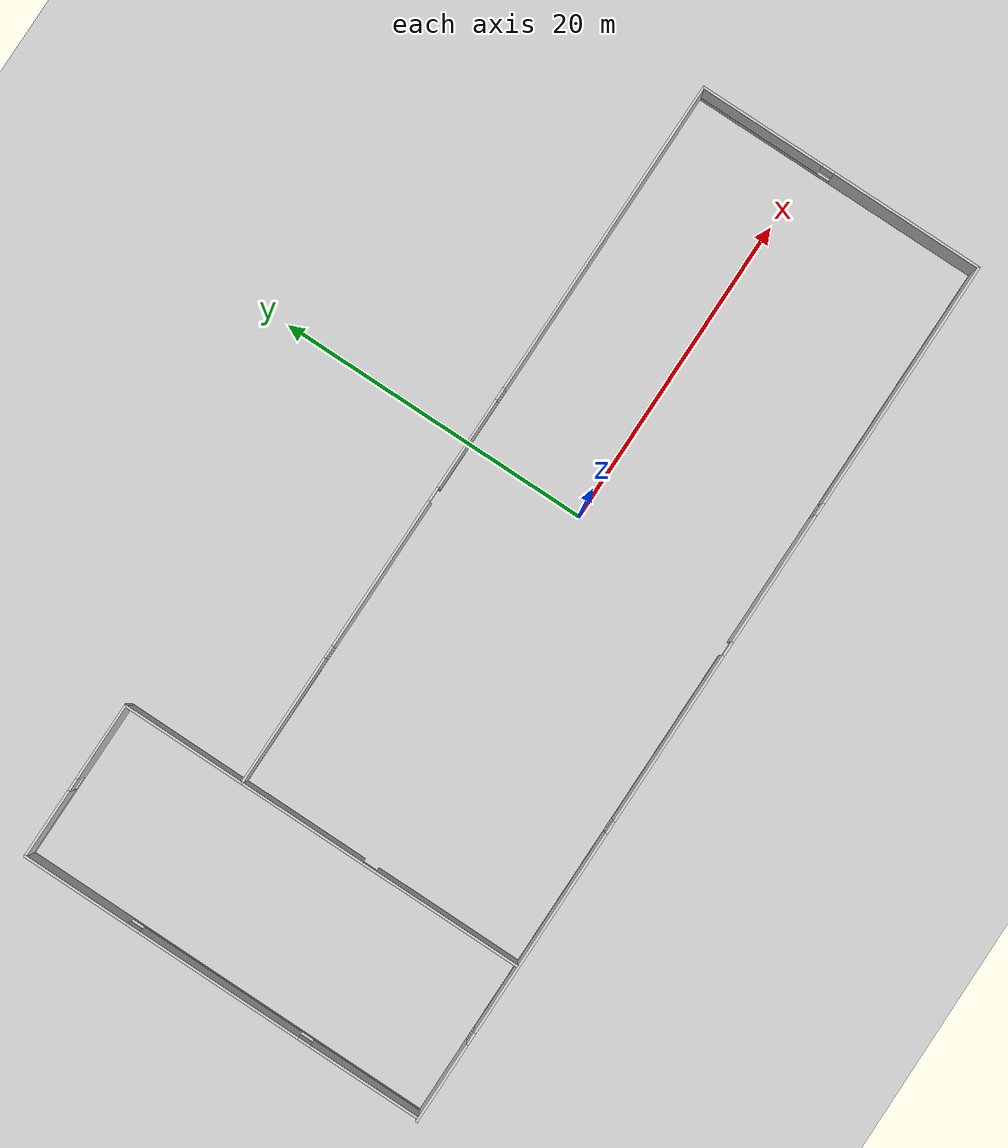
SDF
<sdf version="1.6">
 <world name="default">
  <light name="sun" type="directional">
   <pose>0 0 10 0 -0 0</pose>
   <diffuse>0.8 0.8 0.8 1</diffuse>
   <specular>0.2 0.2 0.2 1</specular>
   <attenuation>
    <range>1000</range>
    <constant>0.9</constant>
    <linear>0.01</linear>
    <quadratic>0.001</quadratic>
   </attenuation>
   <direction>-0.5 0.1 -0.9</direction>
  </light>
  <model name="ground_plane">
   <static>1</static>
   <link name="link">
    <collision name="collision">
     <geometry><plane><normal>0 0 1</normal><size>100 100</size></plane></geometry>
     <surface>
      <contact><collide_bitmask>65535</collide_bitmask></contact>
      <friction><ode><mu>100</mu><mu2>50</mu2></ode></friction>
     </surface>
    </collision>
    <visual name="visual">
     <cast_shadows>0</cast_shadows>
     <geometry><plane><normal>0 0 1</normal><size>100 100</size></plane></geometry>
     <material>
      <script><uri>file://media/materials/scripts/gazebo.material</uri><name>Gazebo/Grey</name></script>
     </material>
    </visual>
   </link>
  </model>
  <gravity>0 0 -9.8</gravity>
  <magnetic_field>6e-06 2.3e-05 -4.2e-05</magnetic_field>
  <atmosphere type="adiabatic"/>
  <physics name="default_physics" default="0" type="ode">
   <max_step_size>0.001</max_step_size>
   <real_time_factor>1</real_time_factor>
   <real_time_update_rate>1000</real_time_update_rate>
  </physics>
  <scene><ambient>0.4 0.4 0.4 1</ambient><background>0.7 0.7 0.7 1</background><shadows>1</shadows></scene>
  <spherical_coordinates>
   <surface_model>EARTH_WGS84</surface_model>
   <latitude_deg>0</latitude_deg>
   <longitude_deg>0</longitude_deg>
   <elevation>0</elevation>
   <heading_deg>0</heading_deg>
  </spherical_coordinates>
  <model name="building_2">
   <pose>-4.62001 2.1392 0 0 -0 0</pose>
   <link name="Wall_0">
    <pose>-1e-06 -13.225 0 0 -0 0</pose>
    <visual name="Wall_0_Visual_0">
     <pose>-26.1899 0 1.25 0 -0 0</pose>
     <geometry><box><size>5.1202 0.15 2.5</size></box></geometry>
     <material>
      <script><uri>file://media/materials/scripts/gazebo.material</uri><name>Gazebo/CeilingTiled</name></script>
      <ambient>1 0.764706 0.305882 1</ambient>
     </material>
     <meta><layer>0</layer></meta>
    </visual>
    <collision name="Wall_0_Collision_0">
     <geometry><box><size>5.1202 0.15 2.5</size></box></geometry>
     <pose>-26.1899 0 1.25 0 -0 0</pose>
    </collision>
    <visual name="Wall_0_Visual_1">
     <pose>7.61008 0 1.25 0 -0 0</pose>
     <geometry><box><size>8.55535 0.15 2.5</size></box></geometry>
     <material>
      <script><uri>file://media/materials/scripts/gazebo.material</uri><name>Gazebo/CeilingTiled</name></script>
      <ambient>1 0.764706 0.305882 1</ambient>
     </material>
     <meta><layer>0</layer></meta>
    </visual>
    <collision name="Wall_0_Collision_1">
     <geometry><box><size>8.55535 0.15 2.5</size></box></geometry>
     <pose>7.61008 0 1.25 0 -0 0</pose>
    </collision>
    <visual name="Wall_0_Visual_2">
     <pose>-10.5987 0 0.25 0 -0 0</pose>
     <geometry><box><size>26.0622 0.15 0.5</size></box></geometry>
     <material>
      <script><uri>file://media/materials/scripts/gazebo.material</uri><name>Gazebo/CeilingTiled</name></script>
      <ambient>1 0.764706 0.305882 1</ambient>
     </material>
     <meta><layer>0</layer></meta>
    </visual>
    <collision name="Wall_0_Collision_2">
     <geometry><box><size>26.0622 0.15 0.5</size></box></geometry>
     <pose>-10.5987 0 0.25 0 -0 0</pose>
    </collision>
    <visual name="Wall_0_Visual_3">
     <pose>20.3189 0 0.25 0 -0 0</pose>
     <geometry><box><size>16.8622 0.15 0.5</size></box></geometry>
     <material>
      <script><uri>file://media/materials/scripts/gazebo.material</uri><name>Gazebo/CeilingTiled</name></script>
      <ambient>1 0.764706 0.305882 1</ambient>
     </material>
     <meta><layer>0</layer></meta>
    </visual>
    <collision name="Wall_0_Collision_3">
     <geometry><box><size>16.8622 0.15 0.5</size></box></geometry>
     <pose>20.3189 0 0.25 0 -0 0</pose>
    </collision>
    <visual name="Wall_0_Visual_4">
     <pose>-16.1758 0 1.5 0 -0 0</pose>
     <geometry><box><size>13.308 0.15 2</size></box></geometry>
     <material>
      <script><uri>file://media/materials/scripts/gazebo.material</uri><name>Gazebo/CeilingTiled</name></script>
      <ambient>1 0.764706 0.305882 1</ambient>
     </material>
     <meta><layer>0</layer></meta>
    </visual>
    <collision name="Wall_0_Collision_4">
     <geometry><box><size>13.308 0.15 2</size></box></geometry>
     <pose>-16.1758 0 1.5 0 -0 0</pose>
    </collision>
    <visual name="Wall_0_Visual_5">
     <pose>-3.14469 0 1.5 0 -0 0</pose>
     <geometry><box><size>11.1542 0.15 2</size></box></geometry>
     <material>
      <script><uri>file://media/materials/scripts/gazebo.material</uri><name>Gazebo/CeilingTiled</name></script>
      <ambient>1 0.764706 0.305882 1</ambient>
     </material>
     <meta><layer>0</layer></meta>
    </visual>
    <collision name="Wall_0_Collision_5">
     <geometry><box><size>11.1542 0.15 2</size></box></geometry>
     <pose>-3.14469 0 1.5 0 -0 0</pose>
    </collision>
    <visual name="Wall_0_Visual_6">
     <pose>-3.14469 0 1.5 0 -0 0</pose>
     <geometry><box><size>11.1542 0.15 2</size></box></geometry>
     <material>
      <script><uri>file://media/materials/scripts/gazebo.material</uri><name>Gazebo/CeilingTiled</name></script>
      <ambient>1 0.764706 0.305882 1</ambient>
     </material>
     <meta><layer>0</layer></meta>
    </visual>
    <collision name="Wall_0_Collision_6">
     <geometry><box><size>11.1542 0.15 2</size></box></geometry>
     <pose>-3.14469 0 1.5 0 -0 0</pose>
    </collision>
    <visual name="Wall_0_Visual_7">
     <pose>20.7189 0 1.5 0 -0 0</pose>
     <geometry><box><size>16.0622 0.15 2</size></box></geometry>
     <material>
      <script><uri>file://media/materials/scripts/gazebo.material</uri><name>Gazebo/CeilingTiled</name></script>
      <ambient>1 0.764706 0.305882 1</ambient>
     </material>
     <meta><layer>0</layer></meta>
    </visual>
    <collision name="Wall_0_Collision_7">
     <geometry><box><size>16.0622 0.15 2</size></box></geometry>
     <pose>20.7189 0 1.5 0 -0 0</pose>
    </collision>
    <visual name="Wall_0_Visual_8">
     <pose>-23.2298 0 1.9 0 -0 0</pose>
     <geometry><box><size>0.8 0.15 1.2</size></box></geometry>
     <material>
      <script><uri>file://media/materials/scripts/gazebo.material</uri><name>Gazebo/CeilingTiled</name></script>
      <ambient>1 0.764706 0.305882 1</ambient>
     </material>
     <meta><layer>0</layer></meta>
    </visual>
    <collision name="Wall_0_Collision_8">
     <geometry><box><size>0.8 0.15 1.2</size></box></geometry>
     <pose>-23.2298 0 1.9 0 -0 0</pose>
    </collision>
    <visual name="Wall_0_Visual_9">
     <pose>12.2878 0 1.9 0 -0 0</pose>
     <geometry><box><size>0.8 0.15 1.2</size></box></geometry>
     <material>
      <script><uri>file://media/materials/scripts/gazebo.material</uri><name>Gazebo/CeilingTiled</name></script>
      <ambient>1 0.764706 0.305882 1</ambient>
     </material>
     <meta><layer>0</layer></meta>
    </visual>
    <collision name="Wall_0_Collision_9">
     <geometry><box><size>0.8 0.15 1.2</size></box></geometry>
     <pose>12.2878 0 1.9 0 -0 0</pose>
    </collision>
    <visual name="Wall_0_Visual_10">
     <pose>-9.12178 0 1.9 0 -0 0</pose>
     <geometry><box><size>0.8 0.15 1.2</size></box></geometry>
     <material>
      <script><uri>file://media/materials/scripts/gazebo.material</uri><name>Gazebo/CeilingTiled</name></script>
      <ambient>1 0.764706 0.305882 1</ambient>
     </material>
     <meta><layer>0</layer></meta>
    </visual>
    <collision name="Wall_0_Collision_10">
     <geometry><box><size>0.8 0.15 1.2</size></box></geometry>
     <pose>-9.12178 0 1.9 0 -0 0</pose>
    </collision>
    <visual name="Wall_0_Visual_11">
     <pose>2.88241 0 2.25 0 -0 0</pose>
     <geometry><box><size>0.9 0.15 0.5</size></box></geometry>
     <material>
      <script><uri>file://media/materials/scripts/gazebo.material</uri><name>Gazebo/CeilingTiled</name></script>
      <ambient>1 0.764706 0.305882 1</ambient>
     </material>
     <meta><layer>0</layer></meta>
    </visual>
    <collision name="Wall_0_Collision_11">
     <geometry><box><size>0.9 0.15 0.5</size></box></geometry>
     <pose>2.88241 0 2.25 0 -0 0</pose>
    </collision>
    <visual name="Wall_0_Visual_12">
     <pose>2.88241 0 2.25 0 -0 0</pose>
     <geometry><box><size>0.9 0.15 0.5</size></box></geometry>
     <material>
      <script><uri>file://media/materials/scripts/gazebo.material</uri><name>Gazebo/CeilingTiled</name></script>
      <ambient>1 0.764706 0.305882 1</ambient>
     </material>
     <meta><layer>0</layer></meta>
    </visual>
    <collision name="Wall_0_Collision_12">
     <geometry><box><size>0.9 0.15 0.5</size></box></geometry>
     <pose>2.88241 0 2.25 0 -0 0</pose>
    </collision>
   </link>
   <link name="Wall_11">
    <pose>-18.425 -3.925 0 0 0 -1.5708</pose>
    <visual name="Wall_11_Visual_0">
     <pose>-5.27456 0 1.25 0 -0 0</pose>
     <geometry><box><size>8.20088 0.15 2.5</size></box></geometry>
     <material>
      <script><uri>file://media/materials/scripts/gazebo.material</uri><name>Gazebo/CeilingTiled</name></script>
      <ambient>0.435294 0.796078 0.67451 1</ambient>
     </material>
     <meta><layer>0</layer></meta>
    </visual>
    <collision name="Wall_11_Collision_0">
     <geometry><box><size>8.20088 0.15 2.5</size></box></geometry>
     <pose>-5.27456 0 1.25 0 -0 0</pose>
    </collision>
    <visual name="Wall_11_Visual_1">
     <pose>4.55044 0 1.25 0 -0 0</pose>
     <geometry><box><size>9.64912 0.15 2.5</size></box></geometry>
     <material>
      <script><uri>file://media/materials/scripts/gazebo.material</uri><name>Gazebo/CeilingTiled</name></script>
      <ambient>0.435294 0.796078 0.67451 1</ambient>
     </material>
     <meta><layer>0</layer></meta>
    </visual>
    <collision name="Wall_11_Collision_1">
     <geometry><box><size>9.64912 0.15 2.5</size></box></geometry>
     <pose>4.55044 0 1.25 0 -0 0</pose>
    </collision>
    <visual name="Wall_11_Visual_2">
     <pose>-0.724117 0 2.25 0 -0 0</pose>
     <geometry><box><size>0.9 0.15 0.5</size></box></geometry>
     <material>
      <script><uri>file://media/materials/scripts/gazebo.material</uri><name>Gazebo/CeilingTiled</name></script>
      <ambient>0.435294 0.796078 0.67451 1</ambient>
     </material>
     <meta><layer>0</layer></meta>
    </visual>
    <collision name="Wall_11_Collision_2">
     <geometry><box><size>0.9 0.15 0.5</size></box></geometry>
     <pose>-0.724117 0 2.25 0 -0 0</pose>
    </collision>
   </link>
   <link name="Wall_4">
    <pose>28.675 -3.925 0 0 -0 1.5708</pose>
    <visual name="Wall_4_Visual_0">
     <pose>-4.46356 0 1.25 0 -0 0</pose>
     <geometry><box><size>9.82287 0.15 2.5</size></box></geometry>
     <material>
      <script><uri>file://media/materials/scripts/gazebo.material</uri><name>Gazebo/CeilingTiled</name></script>
      <ambient>0.996078 0.47451 0.0196078 1</ambient>
     </material>
     <meta><layer>0</layer></meta>
    </visual>
    <collision name="Wall_4_Collision_0">
     <geometry><box><size>9.82287 0.15 2.5</size></box></geometry>
     <pose>-4.46356 0 1.25 0 -0 0</pose>
    </collision>
    <visual name="Wall_4_Visual_1">
     <pose>4.91144 0 0.25 0 -0 0</pose>
     <geometry><box><size>8.92713 0.15 0.5</size></box></geometry>
     <material>
      <script><uri>file://media/materials/scripts/gazebo.material</uri><name>Gazebo/CeilingTiled</name></script>
      <ambient>0.996078 0.47451 0.0196078 1</ambient>
     </material>
     <meta><layer>0</layer></meta>
    </visual>
    <collision name="Wall_4_Collision_1">
     <geometry><box><size>8.92713 0.15 0.5</size></box></geometry>
     <pose>4.91144 0 0.25 0 -0 0</pose>
    </collision>
    <visual name="Wall_4_Visual_2">
     <pose>5.31144 0 1.5 0 -0 0</pose>
     <geometry><box><size>8.12713 0.15 2</size></box></geometry>
     <material>
      <script><uri>file://media/materials/scripts/gazebo.material</uri><name>Gazebo/CeilingTiled</name></script>
      <ambient>0.996078 0.47451 0.0196078 1</ambient>
     </material>
     <meta><layer>0</layer></meta>
    </visual>
    <collision name="Wall_4_Collision_2">
     <geometry><box><size>8.12713 0.15 2</size></box></geometry>
     <pose>5.31144 0 1.5 0 -0 0</pose>
    </collision>
    <visual name="Wall_4_Visual_3">
     <pose>0.847872 0 1.9 0 -0 0</pose>
     <geometry><box><size>0.8 0.15 1.2</size></box></geometry>
     <material>
      <script><uri>file://media/materials/scripts/gazebo.material</uri><name>Gazebo/CeilingTiled</name></script>
      <ambient>0.996078 0.47451 0.0196078 1</ambient>
     </material>
     <meta><layer>0</layer></meta>
    </visual>
    <collision name="Wall_4_Collision_3">
     <geometry><box><size>0.8 0.15 1.2</size></box></geometry>
     <pose>0.847872 0 1.9 0 -0 0</pose>
    </collision>
   </link>
   <link name="Wall_5">
    <pose>5.125 5.375 0 0 -0 3.14159</pose>
    <visual name="Wall_5_Visual_0">
     <pose>-13.3663 0 1.25 0 -0 0</pose>
     <geometry><box><size>20.5174 0.15 2.5</size></box></geometry>
     <material>
      <script><uri>file://media/materials/scripts/gazebo.material</uri><name>Gazebo/CeilingTiled</name></script>
      <ambient>1 0.764706 0.305882 1</ambient>
     </material>
     <meta><layer>0</layer></meta>
    </visual>
    <collision name="Wall_5_Collision_0">
     <geometry><box><size>20.5174 0.15 2.5</size></box></geometry>
     <pose>-13.3663 0 1.25 0 -0 0</pose>
    </collision>
    <visual name="Wall_5_Visual_1">
     <pose>9.44536 0 1.25 0 -0 0</pose>
     <geometry><box><size>9.79289 0.15 2.5</size></box></geometry>
     <material>
      <script><uri>file://media/materials/scripts/gazebo.material</uri><name>Gazebo/CeilingTiled</name></script>
      <ambient>1 0.764706 0.305882 1</ambient>
     </material>
     <meta><layer>0</layer></meta>
    </visual>
    <collision name="Wall_5_Collision_1">
     <geometry><box><size>9.79289 0.15 2.5</size></box></geometry>
     <pose>9.44536 0 1.25 0 -0 0</pose>
    </collision>
    <visual name="Wall_5_Visual_2">
     <pose>0.270662 0 0.25 0 -0 0</pose>
     <geometry><box><size>6.7565 0.15 0.5</size></box></geometry>
     <material>
      <script><uri>file://media/materials/scripts/gazebo.material</uri><name>Gazebo/CeilingTiled</name></script>
      <ambient>1 0.764706 0.305882 1</ambient>
     </material>
     <meta><layer>0</layer></meta>
    </visual>
    <collision name="Wall_5_Collision_2">
     <geometry><box><size>6.7565 0.15 0.5</size></box></geometry>
     <pose>0.270662 0 0.25 0 -0 0</pose>
    </collision>
    <visual name="Wall_5_Visual_3">
     <pose>18.9834 0 0.25 0 -0 0</pose>
     <geometry><box><size>9.2832 0.15 0.5</size></box></geometry>
     <material>
      <script><uri>file://media/materials/scripts/gazebo.material</uri><name>Gazebo/CeilingTiled</name></script>
      <ambient>1 0.764706 0.305882 1</ambient>
     </material>
     <meta><layer>0</layer></meta>
    </visual>
    <collision name="Wall_5_Collision_3">
     <geometry><box><size>9.2832 0.15 0.5</size></box></geometry>
     <pose>18.9834 0 0.25 0 -0 0</pose>
    </collision>
    <visual name="Wall_5_Visual_4">
     <pose>0.670662 0 1.5 0 -0 0</pose>
     <geometry><box><size>5.9565 0.15 2</size></box></geometry>
     <material>
      <script><uri>file://media/materials/scripts/gazebo.material</uri><name>Gazebo/CeilingTiled</name></script>
      <ambient>1 0.764706 0.305882 1</ambient>
     </material>
     <meta><layer>0</layer></meta>
    </visual>
    <collision name="Wall_5_Collision_4">
     <geometry><box><size>5.9565 0.15 2</size></box></geometry>
     <pose>0.670662 0 1.5 0 -0 0</pose>
    </collision>
    <visual name="Wall_5_Visual_5">
     <pose>0.670662 0 1.5 0 -0 0</pose>
     <geometry><box><size>5.9565 0.15 2</size></box></geometry>
     <material>
      <script><uri>file://media/materials/scripts/gazebo.material</uri><name>Gazebo/CeilingTiled</name></script>
      <ambient>1 0.764706 0.305882 1</ambient>
     </material>
     <meta><layer>0</layer></meta>
    </visual>
    <collision name="Wall_5_Collision_5">
     <geometry><box><size>5.9565 0.15 2</size></box></geometry>
     <pose>0.670662 0 1.5 0 -0 0</pose>
    </collision>
    <visual name="Wall_5_Visual_6">
     <pose>19.3834 0 1.5 0 -0 0</pose>
     <geometry><box><size>8.4832 0.15 2</size></box></geometry>
     <material>
      <script><uri>file://media/materials/scripts/gazebo.material</uri><name>Gazebo/CeilingTiled</name></script>
      <ambient>1 0.764706 0.305882 1</ambient>
     </material>
     <meta><layer>0</layer></meta>
    </visual>
    <collision name="Wall_5_Collision_6">
     <geometry><box><size>8.4832 0.15 2</size></box></geometry>
     <pose>19.3834 0 1.5 0 -0 0</pose>
    </collision>
    <visual name="Wall_5_Visual_7">
     <pose>-2.70759 0 1.9 0 -0 0</pose>
     <geometry><box><size>0.8 0.15 1.2</size></box></geometry>
     <material>
      <script><uri>file://media/materials/scripts/gazebo.material</uri><name>Gazebo/CeilingTiled</name></script>
      <ambient>1 0.764706 0.305882 1</ambient>
     </material>
     <meta><layer>0</layer></meta>
    </visual>
    <collision name="Wall_5_Collision_7">
     <geometry><box><size>0.8 0.15 1.2</size></box></geometry>
     <pose>-2.70759 0 1.9 0 -0 0</pose>
    </collision>
    <visual name="Wall_5_Visual_8">
     <pose>14.7418 0 1.9 0 -0 0</pose>
     <geometry><box><size>0.8 0.15 1.2</size></box></geometry>
     <material>
      <script><uri>file://media/materials/scripts/gazebo.material</uri><name>Gazebo/CeilingTiled</name></script>
      <ambient>1 0.764706 0.305882 1</ambient>
     </material>
     <meta><layer>0</layer></meta>
    </visual>
    <collision name="Wall_5_Collision_8">
     <geometry><box><size>0.8 0.15 1.2</size></box></geometry>
     <pose>14.7418 0 1.9 0 -0 0</pose>
    </collision>
    <visual name="Wall_5_Visual_9">
     <pose>4.09891 0 2.25 0 -0 0</pose>
     <geometry><box><size>0.9 0.15 0.5</size></box></geometry>
     <material>
      <script><uri>file://media/materials/scripts/gazebo.material</uri><name>Gazebo/CeilingTiled</name></script>
      <ambient>1 0.764706 0.305882 1</ambient>
     </material>
     <meta><layer>0</layer></meta>
    </visual>
    <collision name="Wall_5_Collision_9">
     <geometry><box><size>0.9 0.15 0.5</size></box></geometry>
     <pose>4.09891 0 2.25 0 -0 0</pose>
    </collision>
    <visual name="Wall_5_Visual_10">
     <pose>4.09891 0 2.25 0 -0 0</pose>
     <geometry><box><size>0.9 0.15 0.5</size></box></geometry>
     <material>
      <script><uri>file://media/materials/scripts/gazebo.material</uri><name>Gazebo/CeilingTiled</name></script>
      <ambient>1 0.764706 0.305882 1</ambient>
     </material>
     <meta><layer>0</layer></meta>
    </visual>
    <collision name="Wall_5_Collision_10">
     <geometry><box><size>0.9 0.15 0.5</size></box></geometry>
     <pose>4.09891 0 2.25 0 -0 0</pose>
    </collision>
   </link>
   <link name="Wall_6">
    <collision name="Wall_6_Collision">
     <geometry><box><size>8 0.15 2.5</size></box></geometry>
     <pose>0 0 1.25 0 -0 0</pose>
    </collision>
    <visual name="Wall_6_Visual">
     <pose>0 0 1.25 0 -0 0</pose>
     <geometry><box><size>8 0.15 2.5</size></box></geometry>
     <material>
      <script><uri>file://media/materials/scripts/gazebo.material</uri><name>Gazebo/CeilingTiled</name></script>
      <ambient>0.435294 0.796078 0.67451 1</ambient>
     </material>
     <meta><layer>0</layer></meta>
    </visual>
    <pose>-18.425 9.3 0 0 -0 1.5708</pose>
   </link>
   <link name="Wall_7">
    <pose>-23.475 13.225 0 0 -0 3.14159</pose>
    <visual name="Wall_7_Visual_0">
     <pose>-2.63759 0 1.25 0 -0 0</pose>
     <geometry><box><size>4.97482 0.15 2.5</size></box></geometry>
     <material>
      <script><uri>file://media/materials/scripts/gazebo.material</uri><name>Gazebo/CeilingTiled</name></script>
      <ambient>1 0 0 1</ambient>
     </material>
     <meta><layer>0</layer></meta>
    </visual>
    <collision name="Wall_7_Collision_0">
     <geometry><box><size>4.97482 0.15 2.5</size></box></geometry>
     <pose>-2.63759 0 1.25 0 -0 0</pose>
    </collision>
    <visual name="Wall_7_Visual_1">
     <pose>2.48741 0 0.25 0 -0 0</pose>
     <geometry><box><size>5.27518 0.15 0.5</size></box></geometry>
     <material>
      <script><uri>file://media/materials/scripts/gazebo.material</uri><name>Gazebo/CeilingTiled</name></script>
      <ambient>1 0 0 1</ambient>
     </material>
     <meta><layer>0</layer></meta>
    </visual>
    <collision name="Wall_7_Collision_1">
     <geometry><box><size>5.27518 0.15 0.5</size></box></geometry>
     <pose>2.48741 0 0.25 0 -0 0</pose>
    </collision>
    <visual name="Wall_7_Visual_2">
     <pose>2.88741 0 1.5 0 -0 0</pose>
     <geometry><box><size>4.47518 0.15 2</size></box></geometry>
     <material>
      <script><uri>file://media/materials/scripts/gazebo.material</uri><name>Gazebo/CeilingTiled</name></script>
      <ambient>1 0 0 1</ambient>
     </material>
     <meta><layer>0</layer></meta>
    </visual>
    <collision name="Wall_7_Collision_2">
     <geometry><box><size>4.47518 0.15 2</size></box></geometry>
     <pose>2.88741 0 1.5 0 -0 0</pose>
    </collision>
    <visual name="Wall_7_Visual_3">
     <pose>0.249819 0 1.9 0 -0 0</pose>
     <geometry><box><size>0.8 0.15 1.2</size></box></geometry>
     <material>
      <script><uri>file://media/materials/scripts/gazebo.material</uri><name>Gazebo/CeilingTiled</name></script>
      <ambient>1 0 0 1</ambient>
     </material>
     <meta><layer>0</layer></meta>
    </visual>
    <collision name="Wall_7_Collision_3">
     <geometry><box><size>0.8 0.15 1.2</size></box></geometry>
     <pose>0.249819 0 1.9 0 -0 0</pose>
    </collision>
   </link>
   <link name="Wall_8">
    <pose>-28.525 0.05 0 0 0 -1.5708</pose>
    <visual name="Wall_8_Visual_0">
     <pose>-9.77848 0 1.25 0 -0 0</pose>
     <geometry><box><size>6.94305 0.15 2.5</size></box></geometry>
     <material>
      <script><uri>file://media/materials/scripts/gazebo.material</uri><name>Gazebo/CeilingTiled</name></script>
      <ambient>0.435294 0.796078 0.67451 1</ambient>
     </material>
     <meta><layer>0</layer></meta>
    </visual>
    <collision name="Wall_8_Collision_0">
     <geometry><box><size>6.94305 0.15 2.5</size></box></geometry>
     <pose>-9.77848 0 1.25 0 -0 0</pose>
    </collision>
    <visual name="Wall_8_Visual_1">
     <pose>3.47152 0 0.25 0 -0 0</pose>
     <geometry><box><size>19.557 0.15 0.5</size></box></geometry>
     <material>
      <script><uri>file://media/materials/scripts/gazebo.material</uri><name>Gazebo/CeilingTiled</name></script>
      <ambient>0.435294 0.796078 0.67451 1</ambient>
     </material>
     <meta><layer>0</layer></meta>
    </visual>
    <collision name="Wall_8_Collision_1">
     <geometry><box><size>19.557 0.15 0.5</size></box></geometry>
     <pose>3.47152 0 0.25 0 -0 0</pose>
    </collision>
    <visual name="Wall_8_Visual_2">
     <pose>-0.152367 0 1.5 0 -0 0</pose>
     <geometry><box><size>10.7092 0.15 2</size></box></geometry>
     <material>
      <script><uri>file://media/materials/scripts/gazebo.material</uri><name>Gazebo/CeilingTiled</name></script>
      <ambient>0.435294 0.796078 0.67451 1</ambient>
     </material>
     <meta><layer>0</layer></meta>
    </visual>
    <collision name="Wall_8_Collision_2">
     <geometry><box><size>10.7092 0.15 2</size></box></geometry>
     <pose>-0.152367 0 1.5 0 -0 0</pose>
    </collision>
    <visual name="Wall_8_Visual_3">
     <pose>9.62611 0 1.5 0 -0 0</pose>
     <geometry><box><size>7.24778 0.15 2</size></box></geometry>
     <material>
      <script><uri>file://media/materials/scripts/gazebo.material</uri><name>Gazebo/CeilingTiled</name></script>
      <ambient>0.435294 0.796078 0.67451 1</ambient>
     </material>
     <meta><layer>0</layer></meta>
    </visual>
    <collision name="Wall_8_Collision_3">
     <geometry><box><size>7.24778 0.15 2</size></box></geometry>
     <pose>9.62611 0 1.5 0 -0 0</pose>
    </collision>
    <visual name="Wall_8_Visual_4">
     <pose>-5.90695 0 1.9 0 -0 0</pose>
     <geometry><box><size>0.8 0.15 1.2</size></box></geometry>
     <material>
      <script><uri>file://media/materials/scripts/gazebo.material</uri><name>Gazebo/CeilingTiled</name></script>
      <ambient>0.435294 0.796078 0.67451 1</ambient>
     </material>
     <meta><layer>0</layer></meta>
    </visual>
    <collision name="Wall_8_Collision_4">
     <geometry><box><size>0.8 0.15 1.2</size></box></geometry>
     <pose>-5.90695 0 1.9 0 -0 0</pose>
    </collision>
    <visual name="Wall_8_Visual_5">
     <pose>5.60222 0 1.9 0 -0 0</pose>
     <geometry><box><size>0.8 0.15 1.2</size></box></geometry>
     <material>
      <script><uri>file://media/materials/scripts/gazebo.material</uri><name>Gazebo/CeilingTiled</name></script>
      <ambient>0.435294 0.796078 0.67451 1</ambient>
     </material>
     <meta><layer>0</layer></meta>
    </visual>
    <collision name="Wall_8_Collision_5">
     <geometry><box><size>0.8 0.15 1.2</size></box></geometry>
     <pose>5.60222 0 1.9 0 -0 0</pose>
    </collision>
   </link>
   <static>1</static>
  </model>
 </world>
</sdf>
